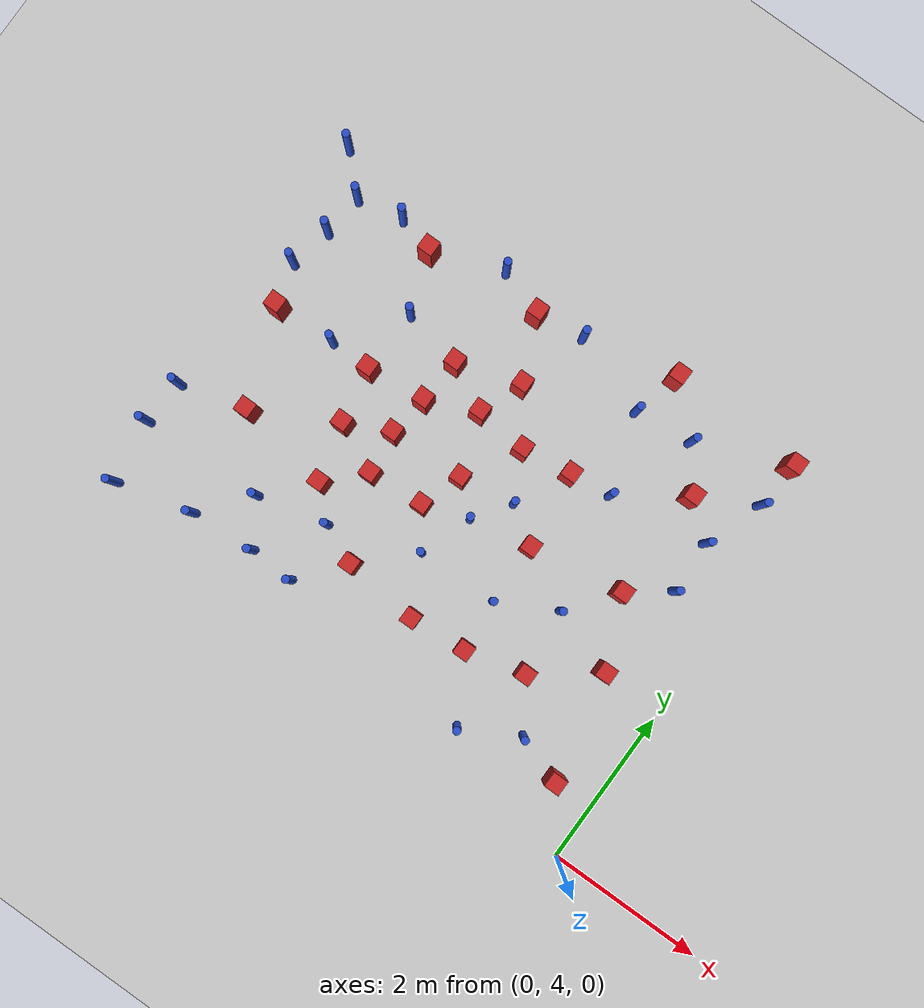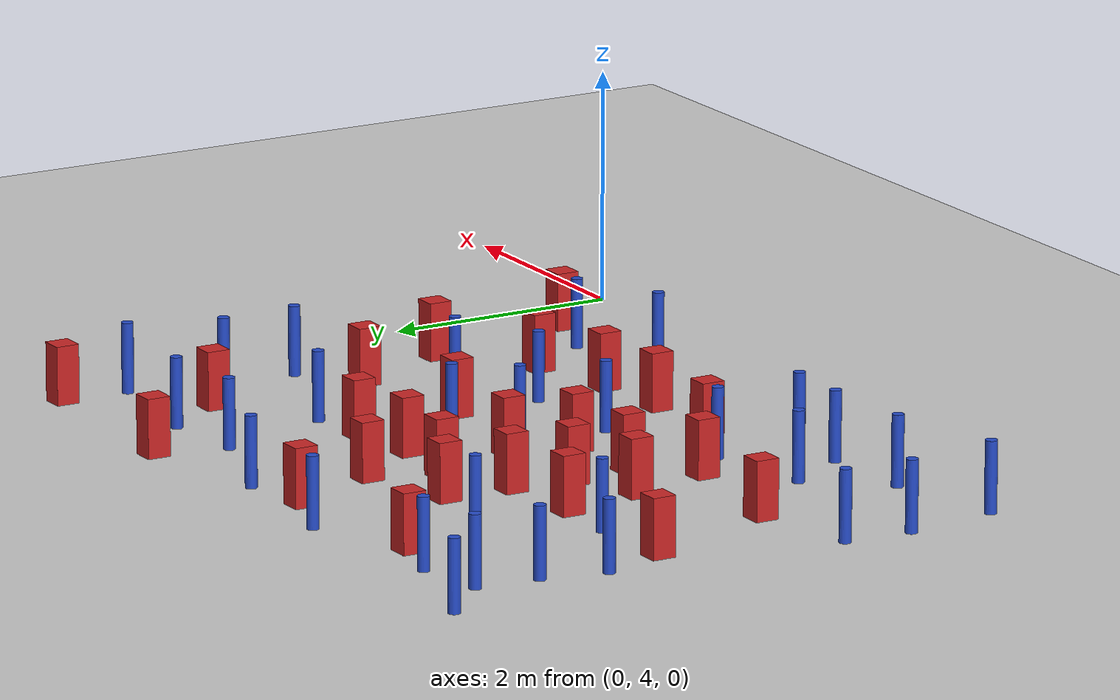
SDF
<sdf version="1.6">
 <world name="default">
  <model name="ground_plane">
   <static>1</static>
   <link name="link">
    <collision name="collision">
     <geometry><plane><normal>0 0 1</normal><size>100 100</size></plane></geometry>
     <surface><friction><ode><mu>100</mu><mu2>50</mu2></ode></friction></surface>
    </collision>
    <visual name="visual">
     <cast_shadows>0</cast_shadows>
     <geometry><plane><normal>0 0 1</normal><size>100 100</size></plane></geometry>
     <material>
      <ambient>1.0 1.0 1.0 1.0</ambient>
      <diffuse>0.8 0.8 0.8 1.0</diffuse>
      <specular>0.01 0.01 0.01 1.000000</specular>
     </material>
    </visual>
   </link>
  </model>
  <model name="pole_obstacle6">
   <static>true</static>
   <pose>-5.39871481957 5.40372556188 2.88873142074e-08 -9.90536690842e-09 4.60219948965e-07 -1.20965994976e-07</pose>
   <link name="link">
    <pose>0 0 0.3 0 -0 0</pose>
    <inertial>
     <mass>1</mass>
     <inertia><ixx>0.145833</ixx><ixy>0</ixy><ixz>0</ixz><iyy>0.145833</iyy><iyz>0</iyz><izz>0.125</izz></inertia>
    </inertial>
    <collision name="collision">
     <geometry><cylinder><radius>0.05</radius><length>.6</length></cylinder></geometry>
    </collision>
    <visual name="visual">
     <geometry><cylinder><radius>0.05</radius><length>.6</length></cylinder></geometry>
     <material>
      <script><name>Gazebo/Blue</name><uri>file://media/materials/scripts/gazebo.material</uri></script>
     </material>
    </visual>
   </link>
  </model>
  <model name="square_post_obstacle6">
   <static>true</static>
   <pose>-5.44352288722 8.96728063291 8.22691968438e-08 7.22125133819e-06 -7.54495500217e-07 2.29674213826e-05</pose>
   <link name="link">
    <pose>0 0 0.25 0 -0 0</pose>
    <inertial>
     <mass>100</mass>
     <inertia>
      <ixx>0.166667</ixx>
      <ixy>0</ixy>
      <ixz>0</ixz>
      <iyy>0.166667</iyy>
      <iyz>0</iyz>
      <izz>0.166667</izz>
     </inertia>
    </inertial>
    <collision name="collision"><geometry><box><size>.2 .2 .5</size></box></geometry></collision>
    <visual name="visual">
     <geometry><box><size>.2 .2 .5</size></box></geometry>
     <material>
      <script><name>Gazebo/Red</name><uri>file://media/materials/scripts/gazebo.material</uri></script>
     </material>
    </visual>
   </link>
  </model>
  <model name="square_post_obstacle9">
   <static>true</static>
   <pose>-2.40552962556 6.80216030799 8.22691968438e-08 7.2212513382e-06 -7.54495500217e-07 2.29674213826e-05</pose>
   <link name="link">
    <pose>0 0 0.25 0 -0 0</pose>
    <inertial>
     <mass>100</mass>
     <inertia>
      <ixx>0.166667</ixx>
      <ixy>0</ixy>
      <ixz>0</ixz>
      <iyy>0.166667</iyy>
      <iyz>0</iyz>
      <izz>0.166667</izz>
     </inertia>
    </inertial>
    <collision name="collision"><geometry><box><size>.2 .2 .5</size></box></geometry></collision>
    <visual name="visual">
     <geometry><box><size>.2 .2 .5</size></box></geometry>
     <material>
      <script><name>Gazebo/Red</name><uri>file://media/materials/scripts/gazebo.material</uri></script>
     </material>
    </visual>
   </link>
  </model>
  <model name="pole_obstacle13">
   <static>true</static>
   <pose>-5.18646854002 8.22817390246 2.88873142074e-08 -9.9053668967e-09 4.60219948993e-07 -1.20965994957e-07</pose>
   <link name="link">
    <pose>0 0 0.3 0 -0 0</pose>
    <inertial>
     <mass>1</mass>
     <inertia><ixx>0.145833</ixx><ixy>0</ixy><ixz>0</ixz><iyy>0.145833</iyy><iyz>0</iyz><izz>0.125</izz></inertia>
    </inertial>
    <collision name="collision">
     <geometry><cylinder><radius>0.05</radius><length>.6</length></cylinder></geometry>
    </collision>
    <visual name="visual">
     <geometry><cylinder><radius>0.05</radius><length>.6</length></cylinder></geometry>
     <material>
      <script><name>Gazebo/Blue</name><uri>file://media/materials/scripts/gazebo.material</uri></script>
     </material>
    </visual>
   </link>
  </model>
  <model name="square_post_obstacle12">
   <static>true</static>
   <pose>-4.40617375858 8.05628131034 8.22691968438e-08 7.22125133819e-06 -7.54495500217e-07 2.29674213826e-05</pose>
   <link name="link">
    <pose>0 0 0.25 0 -0 0</pose>
    <inertial>
     <mass>100</mass>
     <inertia>
      <ixx>0.166667</ixx>
      <ixy>0</ixy>
      <ixz>0</ixz>
      <iyy>0.166667</iyy>
      <iyz>0</iyz>
      <izz>0.166667</izz>
     </inertia>
    </inertial>
    <collision name="collision"><geometry><box><size>.2 .2 .5</size></box></geometry></collision>
    <visual name="visual">
     <geometry><box><size>.2 .2 .5</size></box></geometry>
     <material>
      <script><name>Gazebo/Red</name><uri>file://media/materials/scripts/gazebo.material</uri></script>
     </material>
    </visual>
   </link>
  </model>
  <model name="square_post_obstacle19">
   <static>true</static>
   <pose>-4.44675304929 7.47712940738 8.22691968438e-08 7.22125133819e-06 -7.54495500217e-07 2.29674213826e-05</pose>
   <link name="link">
    <pose>0 0 0.25 0 -0 0</pose>
    <inertial>
     <mass>100</mass>
     <inertia>
      <ixx>0.166667</ixx>
      <ixy>0</ixy>
      <ixz>0</ixz>
      <iyy>0.166667</iyy>
      <iyz>0</iyz>
      <izz>0.166667</izz>
     </inertia>
    </inertial>
    <collision name="collision"><geometry><box><size>.2 .2 .5</size></box></geometry></collision>
    <visual name="visual">
     <geometry><box><size>.2 .2 .5</size></box></geometry>
     <material>
      <script><name>Gazebo/Red</name><uri>file://media/materials/scripts/gazebo.material</uri></script>
     </material>
    </visual>
   </link>
  </model>
  <model name="pole_obstacle29">
   <static>true</static>
   <pose>-1.86663074836 4.56977435999 2.88873142074e-08 -9.90536689852e-09 4.60219948989e-07 -1.2096599496e-07</pose>
   <link name="link">
    <pose>0 0 0.3 0 -0 0</pose>
    <inertial>
     <mass>1</mass>
     <inertia><ixx>0.145833</ixx><ixy>0</ixy><ixz>0</ixz><iyy>0.145833</iyy><iyz>0</iyz><izz>0.125</izz></inertia>
    </inertial>
    <collision name="collision">
     <geometry><cylinder><radius>0.05</radius><length>.6</length></cylinder></geometry>
    </collision>
    <visual name="visual">
     <geometry><cylinder><radius>0.05</radius><length>.6</length></cylinder></geometry>
     <material>
      <script><name>Gazebo/Blue</name><uri>file://media/materials/scripts/gazebo.material</uri></script>
     </material>
    </visual>
   </link>
  </model>
  <model name="pole_obstacle34">
   <static>true</static>
   <pose>-0.481667703612 8.80842433048 2.88873142074e-08 -9.90536690305e-09 4.60219948978e-07 -1.20965994968e-07</pose>
   <link name="link">
    <pose>0 0 0.3 0 -0 0</pose>
    <inertial>
     <mass>1</mass>
     <inertia><ixx>0.145833</ixx><ixy>0</ixy><ixz>0</ixz><iyy>0.145833</iyy><iyz>0</iyz><izz>0.125</izz></inertia>
    </inertial>
    <collision name="collision">
     <geometry><cylinder><radius>0.05</radius><length>.6</length></cylinder></geometry>
    </collision>
    <visual name="visual">
     <geometry><cylinder><radius>0.05</radius><length>.6</length></cylinder></geometry>
     <material>
      <script><name>Gazebo/Blue</name><uri>file://media/materials/scripts/gazebo.material</uri></script>
     </material>
    </visual>
   </link>
  </model>
  <model name="pole_obstacle38">
   <static>true</static>
   <pose>-1.16498267179 4.93735905651 2.88873142074e-08 -9.90536689852e-09 4.60219948989e-07 -1.2096599496e-07</pose>
   <link name="link">
    <pose>0 0 0.3 0 -0 0</pose>
    <inertial>
     <mass>1</mass>
     <inertia><ixx>0.145833</ixx><ixy>0</ixy><ixz>0</ixz><iyy>0.145833</iyy><iyz>0</iyz><izz>0.125</izz></inertia>
    </inertial>
    <collision name="collision">
     <geometry><cylinder><radius>0.05</radius><length>.6</length></cylinder></geometry>
    </collision>
    <visual name="visual">
     <geometry><cylinder><radius>0.05</radius><length>.6</length></cylinder></geometry>
     <material>
      <script><name>Gazebo/Blue</name><uri>file://media/materials/scripts/gazebo.material</uri></script>
     </material>
    </visual>
   </link>
  </model>
  <model name="pole_obstacle42">
   <static>true</static>
   <pose>-0.716806600223 7.37980666322 2.88873142074e-08 -9.90536689661e-09 4.60219948993e-07 -1.20965994957e-07</pose>
   <link name="link">
    <pose>0 0 0.3 0 -0 0</pose>
    <inertial>
     <mass>1</mass>
     <inertia><ixx>0.145833</ixx><ixy>0</ixy><ixz>0</ixz><iyy>0.145833</iyy><iyz>0</iyz><izz>0.125</izz></inertia>
    </inertial>
    <collision name="collision">
     <geometry><cylinder><radius>0.05</radius><length>.6</length></cylinder></geometry>
    </collision>
    <visual name="visual">
     <geometry><cylinder><radius>0.05</radius><length>.6</length></cylinder></geometry>
     <material>
      <script><name>Gazebo/Blue</name><uri>file://media/materials/scripts/gazebo.material</uri></script>
     </material>
    </visual>
   </link>
  </model>
  <model name="square_post_obstacle31">
   <static>true</static>
   <pose>-3.05456884452 5.30377931541 8.22691968438e-08 7.2212513382e-06 -7.54495500217e-07 2.29674213826e-05</pose>
   <link name="link">
    <pose>0 0 0.25 0 -0 0</pose>
    <inertial>
     <mass>100</mass>
     <inertia>
      <ixx>0.166667</ixx>
      <ixy>0</ixy>
      <ixz>0</ixz>
      <iyy>0.166667</iyy>
      <iyz>0</iyz>
      <izz>0.166667</izz>
     </inertia>
    </inertial>
    <collision name="collision"><geometry><box><size>.2 .2 .5</size></box></geometry></collision>
    <visual name="visual">
     <geometry><box><size>.2 .2 .5</size></box></geometry>
     <material>
      <script><name>Gazebo/Red</name><uri>file://media/materials/scripts/gazebo.material</uri></script>
     </material>
    </visual>
   </link>
  </model>
  <model name="square_post_obstacle43">
   <static>true</static>
   <pose>-2.17245626034 9.46087501841 8.22691968438e-08 7.22125133819e-06 -7.54495500217e-07 2.29674213826e-05</pose>
   <link name="link">
    <pose>0 0 0.25 0 -0 0</pose>
    <inertial>
     <mass>100</mass>
     <inertia>
      <ixx>0.166667</ixx>
      <ixy>0</ixy>
      <ixz>0</ixz>
      <iyy>0.166667</iyy>
      <iyz>0</iyz>
      <izz>0.166667</izz>
     </inertia>
    </inertial>
    <collision name="collision"><geometry><box><size>.2 .2 .5</size></box></geometry></collision>
    <visual name="visual">
     <geometry><box><size>.2 .2 .5</size></box></geometry>
     <material>
      <script><name>Gazebo/Red</name><uri>file://media/materials/scripts/gazebo.material</uri></script>
     </material>
    </visual>
   </link>
  </model>
  <model name="pole_obstacle58">
   <static>true</static>
   <pose>-6.58434059168 8.46457107998 2.88873142074e-08 -9.9053668967e-09 4.60219948993e-07 -1.20965994957e-07</pose>
   <link name="link">
    <pose>0 0 0.3 0 -0 0</pose>
    <inertial>
     <mass>1</mass>
     <inertia><ixx>0.145833</ixx><ixy>0</ixy><ixz>0</ixz><iyy>0.145833</iyy><iyz>0</iyz><izz>0.125</izz></inertia>
    </inertial>
    <collision name="collision">
     <geometry><cylinder><radius>0.05</radius><length>.6</length></cylinder></geometry>
    </collision>
    <visual name="visual">
     <geometry><cylinder><radius>0.05</radius><length>.6</length></cylinder></geometry>
     <material>
      <script><name>Gazebo/Blue</name><uri>file://media/materials/scripts/gazebo.material</uri></script>
     </material>
    </visual>
   </link>
  </model>
  <model name="pole_obstacle60">
   <static>true</static>
   <pose>-6.53059413038 9.00175205333 2.88873142074e-08 -9.9053668967e-09 4.60219948993e-07 -1.20965994957e-07</pose>
   <link name="link">
    <pose>0 0 0.3 0 -0 0</pose>
    <inertial>
     <mass>1</mass>
     <inertia><ixx>0.145833</ixx><ixy>0</ixy><ixz>0</ixz><iyy>0.145833</iyy><iyz>0</iyz><izz>0.125</izz></inertia>
    </inertial>
    <collision name="collision">
     <geometry><cylinder><radius>0.05</radius><length>.6</length></cylinder></geometry>
    </collision>
    <visual name="visual">
     <geometry><cylinder><radius>0.05</radius><length>.6</length></cylinder></geometry>
     <material>
      <script><name>Gazebo/Blue</name><uri>file://media/materials/scripts/gazebo.material</uri></script>
     </material>
    </visual>
   </link>
  </model>
  <model name="pole_obstacle62">
   <static>true</static>
   <pose>-5.06025532116 4.84926571977 2.88873142074e-08 -9.90536690842e-09 4.60219948965e-07 -1.20965994976e-07</pose>
   <link name="link">
    <pose>0 0 0.3 0 -0 0</pose>
    <inertial>
     <mass>1</mass>
     <inertia><ixx>0.145833</ixx><ixy>0</ixy><ixz>0</ixz><iyy>0.145833</iyy><iyz>0</iyz><izz>0.125</izz></inertia>
    </inertial>
    <collision name="collision">
     <geometry><cylinder><radius>0.05</radius><length>.6</length></cylinder></geometry>
    </collision>
    <visual name="visual">
     <geometry><cylinder><radius>0.05</radius><length>.6</length></cylinder></geometry>
     <material>
      <script><name>Gazebo/Blue</name><uri>file://media/materials/scripts/gazebo.material</uri></script>
     </material>
    </visual>
   </link>
  </model>
  <model name="pole_obstacle67">
   <static>true</static>
   <pose>-3.18029994848 6.6601045909 2.88873142074e-08 -9.90536689859e-09 4.60219948989e-07 -1.20965994961e-07</pose>
   <link name="link">
    <pose>0 0 0.3 0 -0 0</pose>
    <inertial>
     <mass>1</mass>
     <inertia><ixx>0.145833</ixx><ixy>0</ixy><ixz>0</ixz><iyy>0.145833</iyy><iyz>0</iyz><izz>0.125</izz></inertia>
    </inertial>
    <collision name="collision">
     <geometry><cylinder><radius>0.05</radius><length>.6</length></cylinder></geometry>
    </collision>
    <visual name="visual">
     <geometry><cylinder><radius>0.05</radius><length>.6</length></cylinder></geometry>
     <material>
      <script><name>Gazebo/Blue</name><uri>file://media/materials/scripts/gazebo.material</uri></script>
     </material>
    </visual>
   </link>
  </model>
  <model name="square_post_obstacle56">
   <static>true</static>
   <pose>-5.06118573925 6.69937306652 8.22691968438e-08 7.2212513382e-06 -7.54495500217e-07 2.29674213826e-05</pose>
   <link name="link">
    <pose>0 0 0.25 0 -0 0</pose>
    <inertial>
     <mass>100</mass>
     <inertia>
      <ixx>0.166667</ixx>
      <ixy>0</ixy>
      <ixz>0</ixz>
      <iyy>0.166667</iyy>
      <iyz>0</iyz>
      <izz>0.166667</izz>
     </inertia>
    </inertial>
    <collision name="collision"><geometry><box><size>.2 .2 .5</size></box></geometry></collision>
    <visual name="visual">
     <geometry><box><size>.2 .2 .5</size></box></geometry>
     <material>
      <script><name>Gazebo/Red</name><uri>file://media/materials/scripts/gazebo.material</uri></script>
     </material>
    </visual>
   </link>
  </model>
  <model name="pole_obstacle71">
   <static>true</static>
   <pose>-4.56548550473 9.32434049123 2.88873142074e-08 -9.9053668967e-09 4.60219948993e-07 -1.20965994957e-07</pose>
   <link name="link">
    <pose>0 0 0.3 0 -0 0</pose>
    <inertial>
     <mass>1</mass>
     <inertia><ixx>0.145833</ixx><ixy>0</ixy><ixz>0</ixz><iyy>0.145833</iyy><iyz>0</iyz><izz>0.125</izz></inertia>
    </inertial>
    <collision name="collision">
     <geometry><cylinder><radius>0.05</radius><length>.6</length></cylinder></geometry>
    </collision>
    <visual name="visual">
     <geometry><cylinder><radius>0.05</radius><length>.6</length></cylinder></geometry>
     <material>
      <script><name>Gazebo/Blue</name><uri>file://media/materials/scripts/gazebo.material</uri></script>
     </material>
    </visual>
   </link>
  </model>
  <model name="square_post_obstacle62">
   <static>true</static>
   <pose>-2.33165816164 5.36291998302 8.22691968438e-08 7.2212513382e-06 -7.54495500217e-07 2.29674213826e-05</pose>
   <link name="link">
    <pose>0 0 0.25 0 -0 0</pose>
    <inertial>
     <mass>100</mass>
     <inertia>
      <ixx>0.166667</ixx>
      <ixy>0</ixy>
      <ixz>0</ixz>
      <iyy>0.166667</iyy>
      <iyz>0</iyz>
      <izz>0.166667</izz>
     </inertia>
    </inertial>
    <collision name="collision"><geometry><box><size>.2 .2 .5</size></box></geometry></collision>
    <visual name="visual">
     <geometry><box><size>.2 .2 .5</size></box></geometry>
     <material>
      <script><name>Gazebo/Red</name><uri>file://media/materials/scripts/gazebo.material</uri></script>
     </material>
    </visual>
   </link>
  </model>
  <model name="pole_obstacle87">
   <static>true</static>
   <pose>-2.3881738949 6.02360435601 2.88873142074e-08 -9.90536689859e-09 4.60219948989e-07 -1.20965994961e-07</pose>
   <link name="link">
    <pose>0 0 0.3 0 -0 0</pose>
    <inertial>
     <mass>1</mass>
     <inertia><ixx>0.145833</ixx><ixy>0</ixy><ixz>0</ixz><iyy>0.145833</iyy><iyz>0</iyz><izz>0.125</izz></inertia>
    </inertial>
    <collision name="collision">
     <geometry><cylinder><radius>0.05</radius><length>.6</length></cylinder></geometry>
    </collision>
    <visual name="visual">
     <geometry><cylinder><radius>0.05</radius><length>.6</length></cylinder></geometry>
     <material>
      <script><name>Gazebo/Blue</name><uri>file://media/materials/scripts/gazebo.material</uri></script>
     </material>
    </visual>
   </link>
  </model>
  <model name="square_post_obstacle75">
   <static>true</static>
   <pose>-4.87313858558 5.97172338663 8.22691968438e-08 7.2212513382e-06 -7.54495500217e-07 2.29674213826e-05</pose>
   <link name="link">
    <pose>0 0 0.25 0 -0 0</pose>
    <inertial>
     <mass>100</mass>
     <inertia>
      <ixx>0.166667</ixx>
      <ixy>0</ixy>
      <ixz>0</ixz>
      <iyy>0.166667</iyy>
      <iyz>0</iyz>
      <izz>0.166667</izz>
     </inertia>
    </inertial>
    <collision name="collision"><geometry><box><size>.2 .2 .5</size></box></geometry></collision>
    <visual name="visual">
     <geometry><box><size>.2 .2 .5</size></box></geometry>
     <material>
      <script><name>Gazebo/Red</name><uri>file://media/materials/scripts/gazebo.material</uri></script>
     </material>
    </visual>
   </link>
  </model>
  <model name="square_post_obstacle82">
   <static>true</static>
   <pose>-1.20971226837 8.40406901079 8.22691968438e-08 7.22125133819e-06 -7.54495500217e-07 2.29674213826e-05</pose>
   <link name="link">
    <pose>0 0 0.25 0 -0 0</pose>
    <inertial>
     <mass>100</mass>
     <inertia>
      <ixx>0.166667</ixx>
      <ixy>0</ixy>
      <ixz>0</ixz>
      <iyy>0.166667</iyy>
      <iyz>0</iyz>
      <izz>0.166667</izz>
     </inertia>
    </inertial>
    <collision name="collision"><geometry><box><size>.2 .2 .5</size></box></geometry></collision>
    <visual name="visual">
     <geometry><box><size>.2 .2 .5</size></box></geometry>
     <material>
      <script><name>Gazebo/Red</name><uri>file://media/materials/scripts/gazebo.material</uri></script>
     </material>
    </visual>
   </link>
  </model>
  <model name="square_post_obstacle84">
   <static>true</static>
   <pose>-0.839483927578 6.1164537675 8.22691968438e-08 7.2212513382e-06 -7.54495500217e-07 2.29674213826e-05</pose>
   <link name="link">
    <pose>0 0 0.25 0 -0 0</pose>
    <inertial>
     <mass>100</mass>
     <inertia>
      <ixx>0.166667</ixx>
      <ixy>0</ixy>
      <ixz>0</ixz>
      <iyy>0.166667</iyy>
      <iyz>0</iyz>
      <izz>0.166667</izz>
     </inertia>
    </inertial>
    <collision name="collision"><geometry><box><size>.2 .2 .5</size></box></geometry></collision>
    <visual name="visual">
     <geometry><box><size>.2 .2 .5</size></box></geometry>
     <material>
      <script><name>Gazebo/Red</name><uri>file://media/materials/scripts/gazebo.material</uri></script>
     </material>
    </visual>
   </link>
  </model>
  <model name="pole_obstacle94">
   <static>true</static>
   <pose>-4.51606417803 5.6131885328 2.88873142074e-08 -9.90536690842e-09 4.60219948965e-07 -1.20965994976e-07</pose>
   <link name="link">
    <pose>0 0 0.3 0 -0 0</pose>
    <inertial>
     <mass>1</mass>
     <inertia><ixx>0.145833</ixx><ixy>0</ixy><ixz>0</ixz><iyy>0.145833</iyy><iyz>0</iyz><izz>0.125</izz></inertia>
    </inertial>
    <collision name="collision">
     <geometry><cylinder><radius>0.05</radius><length>.6</length></cylinder></geometry>
    </collision>
    <visual name="visual">
     <geometry><cylinder><radius>0.05</radius><length>.6</length></cylinder></geometry>
     <material>
      <script><name>Gazebo/Blue</name><uri>file://media/materials/scripts/gazebo.material</uri></script>
     </material>
    </visual>
   </link>
  </model>
  <model name="pole_obstacle96">
   <static>true</static>
   <pose>-5.89325433743 4.7924099447 2.88873142074e-08 -9.90536690842e-09 4.60219948965e-07 -1.20965994976e-07</pose>
   <link name="link">
    <pose>0 0 0.3 0 -0 0</pose>
    <inertial>
     <mass>1</mass>
     <inertia><ixx>0.145833</ixx><ixy>0</ixy><ixz>0</ixz><iyy>0.145833</iyy><iyz>0</iyz><izz>0.125</izz></inertia>
    </inertial>
    <collision name="collision">
     <geometry><cylinder><radius>0.05</radius><length>.6</length></cylinder></geometry>
    </collision>
    <visual name="visual">
     <geometry><cylinder><radius>0.05</radius><length>.6</length></cylinder></geometry>
     <material>
      <script><name>Gazebo/Blue</name><uri>file://media/materials/scripts/gazebo.material</uri></script>
     </material>
    </visual>
   </link>
  </model>
  <model name="pole_obstacle100">
   <static>true</static>
   <pose>-3.35337035426 9.21310781277 2.88873142074e-08 -9.90536692318e-09 4.6021994893e-07 -1.20965994988e-07</pose>
   <link name="link">
    <pose>0 0 0.3 0 -0 0</pose>
    <inertial>
     <mass>1</mass>
     <inertia><ixx>0.145833</ixx><ixy>0</ixy><ixz>0</ixz><iyy>0.145833</iyy><iyz>0</iyz><izz>0.125</izz></inertia>
    </inertial>
    <collision name="collision">
     <geometry><cylinder><radius>0.05</radius><length>.6</length></cylinder></geometry>
    </collision>
    <visual name="visual">
     <geometry><cylinder><radius>0.05</radius><length>.6</length></cylinder></geometry>
     <material>
      <script><name>Gazebo/Blue</name><uri>file://media/materials/scripts/gazebo.material</uri></script>
     </material>
    </visual>
   </link>
  </model>
  <model name="square_post_obstacle93">
   <static>true</static>
   <pose>-5.19623955509 7.39889034241 8.22691968438e-08 7.2212513382e-06 -7.54495500217e-07 2.29674213826e-05</pose>
   <link name="link">
    <pose>0 0 0.25 0 -0 0</pose>
    <inertial>
     <mass>100</mass>
     <inertia>
      <ixx>0.166667</ixx>
      <ixy>0</ixy>
      <ixz>0</ixz>
      <iyy>0.166667</iyy>
      <iyz>0</iyz>
      <izz>0.166667</izz>
     </inertia>
    </inertial>
    <collision name="collision"><geometry><box><size>.2 .2 .5</size></box></geometry></collision>
    <visual name="visual">
     <geometry><box><size>.2 .2 .5</size></box></geometry>
     <material>
      <script><name>Gazebo/Red</name><uri>file://media/materials/scripts/gazebo.material</uri></script>
     </material>
    </visual>
   </link>
  </model>
  <model name="square_post_obstacle98">
   <static>true</static>
   <pose>-1.2213538814 6.99735682938 8.22691968438e-08 7.2212513382e-06 -7.54495500217e-07 2.29674213826e-05</pose>
   <link name="link">
    <pose>0 0 0.25 0 -0 0</pose>
    <inertial>
     <mass>100</mass>
     <inertia>
      <ixx>0.166667</ixx>
      <ixy>0</ixy>
      <ixz>0</ixz>
      <iyy>0.166667</iyy>
      <iyz>0</iyz>
      <izz>0.166667</izz>
     </inertia>
    </inertial>
    <collision name="collision"><geometry><box><size>.2 .2 .5</size></box></geometry></collision>
    <visual name="visual">
     <geometry><box><size>.2 .2 .5</size></box></geometry>
     <material>
      <script><name>Gazebo/Red</name><uri>file://media/materials/scripts/gazebo.material</uri></script>
     </material>
    </visual>
   </link>
  </model>
  <model name="pole_obstacle111">
   <static>true</static>
   <pose>-1.99493561344 7.85896032537 2.88873142074e-08 -9.90536689721e-09 4.60219948992e-07 -1.20965994958e-07</pose>
   <link name="link">
    <pose>0 0 0.3 0 -0 0</pose>
    <inertial>
     <mass>1</mass>
     <inertia><ixx>0.145833</ixx><ixy>0</ixy><ixz>0</ixz><iyy>0.145833</iyy><iyz>0</iyz><izz>0.125</izz></inertia>
    </inertial>
    <collision name="collision">
     <geometry><cylinder><radius>0.05</radius><length>.6</length></cylinder></geometry>
    </collision>
    <visual name="visual">
     <geometry><cylinder><radius>0.05</radius><length>.6</length></cylinder></geometry>
     <material>
      <script><name>Gazebo/Blue</name><uri>file://media/materials/scripts/gazebo.material</uri></script>
     </material>
    </visual>
   </link>
  </model>
  <model name="square_post_obstacle106">
   <static>true</static>
   <pose>-4.44873407707 6.40785976472 8.22691968438e-08 7.2212513382e-06 -7.54495500217e-07 2.29674213826e-05</pose>
   <link name="link">
    <pose>0 0 0.25 0 -0 0</pose>
    <inertial>
     <mass>100</mass>
     <inertia>
      <ixx>0.166667</ixx>
      <ixy>0</ixy>
      <ixz>0</ixz>
      <iyy>0.166667</iyy>
      <iyz>0</iyz>
      <izz>0.166667</izz>
     </inertia>
    </inertial>
    <collision name="collision"><geometry><box><size>.2 .2 .5</size></box></geometry></collision>
    <visual name="visual">
     <geometry><box><size>.2 .2 .5</size></box></geometry>
     <material>
      <script><name>Gazebo/Red</name><uri>file://media/materials/scripts/gazebo.material</uri></script>
     </material>
    </visual>
   </link>
  </model>
  <model name="square_post_obstacle110">
   <static>true</static>
   <pose>-0.45504423027 9.3937897427 8.22691968438e-08 7.22125133819e-06 -7.54495500217e-07 2.29674213826e-05</pose>
   <link name="link">
    <pose>0 0 0.25 0 -0 0</pose>
    <inertial>
     <mass>100</mass>
     <inertia>
      <ixx>0.166667</ixx>
      <ixy>0</ixy>
      <ixz>0</ixz>
      <iyy>0.166667</iyy>
      <iyz>0</iyz>
      <izz>0.166667</izz>
     </inertia>
    </inertial>
    <collision name="collision"><geometry><box><size>.2 .2 .5</size></box></geometry></collision>
    <visual name="visual">
     <geometry><box><size>.2 .2 .5</size></box></geometry>
     <material>
      <script><name>Gazebo/Red</name><uri>file://media/materials/scripts/gazebo.material</uri></script>
     </material>
    </visual>
   </link>
  </model>
  <model name="square_post_obstacle117">
   <static>true</static>
   <pose>-3.82484179708 7.75393897878 8.22691968438e-08 7.2212513382e-06 -7.54495500217e-07 2.29674213826e-05</pose>
   <link name="link">
    <pose>0 0 0.25 0 -0 0</pose>
    <inertial>
     <mass>100</mass>
     <inertia>
      <ixx>0.166667</ixx>
      <ixy>0</ixy>
      <ixz>0</ixz>
      <iyy>0.166667</iyy>
      <iyz>0</iyz>
      <izz>0.166667</izz>
     </inertia>
    </inertial>
    <collision name="collision"><geometry><box><size>.2 .2 .5</size></box></geometry></collision>
    <visual name="visual">
     <geometry><box><size>.2 .2 .5</size></box></geometry>
     <material>
      <script><name>Gazebo/Red</name><uri>file://media/materials/scripts/gazebo.material</uri></script>
     </material>
    </visual>
   </link>
  </model>
  <model name="pole_obstacle118">
   <static>true</static>
   <pose>-2.32695363559 8.85681343982 2.88873142074e-08 -9.90536692318e-09 4.6021994893e-07 -1.20965994988e-07</pose>
   <link name="link">
    <pose>0 0 0.3 0 -0 0</pose>
    <inertial>
     <mass>1</mass>
     <inertia><ixx>0.145833</ixx><ixy>0</ixy><ixz>0</ixz><iyy>0.145833</iyy><iyz>0</iyz><izz>0.125</izz></inertia>
    </inertial>
    <collision name="collision">
     <geometry><cylinder><radius>0.05</radius><length>.6</length></cylinder></geometry>
    </collision>
    <visual name="visual">
     <geometry><cylinder><radius>0.05</radius><length>.6</length></cylinder></geometry>
     <material>
      <script><name>Gazebo/Blue</name><uri>file://media/materials/scripts/gazebo.material</uri></script>
     </material>
    </visual>
   </link>
  </model>
  <model name="pole_obstacle127">
   <static>true</static>
   <pose>-6.86161632695 4.54932415554 2.88873142074e-08 -9.90536690842e-09 4.60219948965e-07 -1.20965994976e-07</pose>
   <link name="link">
    <pose>0 0 0.3 0 -0 0</pose>
    <inertial>
     <mass>1</mass>
     <inertia><ixx>0.145833</ixx><ixy>0</ixy><ixz>0</ixz><iyy>0.145833</iyy><iyz>0</iyz><izz>0.125</izz></inertia>
    </inertial>
    <collision name="collision">
     <geometry><cylinder><radius>0.05</radius><length>.6</length></cylinder></geometry>
    </collision>
    <visual name="visual">
     <geometry><cylinder><radius>0.05</radius><length>.6</length></cylinder></geometry>
     <material>
      <script><name>Gazebo/Blue</name><uri>file://media/materials/scripts/gazebo.material</uri></script>
     </material>
    </visual>
   </link>
  </model>
  <model name="square_post_obstacle131">
   <static>true</static>
   <pose>-3.96247047747 9.10130128998 8.22691968438e-08 7.22125133819e-06 -7.54495500217e-07 2.29674213826e-05</pose>
   <link name="link">
    <pose>0 0 0.25 0 -0 0</pose>
    <inertial>
     <mass>100</mass>
     <inertia>
      <ixx>0.166667</ixx>
      <ixy>0</ixy>
      <ixz>0</ixz>
      <iyy>0.166667</iyy>
      <iyz>0</iyz>
      <izz>0.166667</izz>
     </inertia>
    </inertial>
    <collision name="collision"><geometry><box><size>.2 .2 .5</size></box></geometry></collision>
    <visual name="visual">
     <geometry><box><size>.2 .2 .5</size></box></geometry>
     <material>
      <script><name>Gazebo/Red</name><uri>file://media/materials/scripts/gazebo.material</uri></script>
     </material>
    </visual>
   </link>
  </model>
  <model name="square_post_obstacle134">
   <static>true</static>
   <pose>-3.61095404733 8.30838900713 8.22691968438e-08 7.22125133819e-06 -7.54495500217e-07 2.29674213826e-05</pose>
   <link name="link">
    <pose>0 0 0.25 0 -0 0</pose>
    <inertial>
     <mass>100</mass>
     <inertia>
      <ixx>0.166667</ixx>
      <ixy>0</ixy>
      <ixz>0</ixz>
      <iyy>0.166667</iyy>
      <iyz>0</iyz>
      <izz>0.166667</izz>
     </inertia>
    </inertial>
    <collision name="collision"><geometry><box><size>.2 .2 .5</size></box></geometry></collision>
    <visual name="visual">
     <geometry><box><size>.2 .2 .5</size></box></geometry>
     <material>
      <script><name>Gazebo/Red</name><uri>file://media/materials/scripts/gazebo.material</uri></script>
     </material>
    </visual>
   </link>
  </model>
  <model name="square_post_obstacle140">
   <static>true</static>
   <pose>-3.74321945377 6.46097556506 8.22691968438e-08 7.2212513382e-06 -7.54495500217e-07 2.29674213826e-05</pose>
   <link name="link">
    <pose>0 0 0.25 0 -0 0</pose>
    <inertial>
     <mass>100</mass>
     <inertia>
      <ixx>0.166667</ixx>
      <ixy>0</ixy>
      <ixz>0</ixz>
      <iyy>0.166667</iyy>
      <iyz>0</iyz>
      <izz>0.166667</izz>
     </inertia>
    </inertial>
    <collision name="collision"><geometry><box><size>.2 .2 .5</size></box></geometry></collision>
    <visual name="visual">
     <geometry><box><size>.2 .2 .5</size></box></geometry>
     <material>
      <script><name>Gazebo/Red</name><uri>file://media/materials/scripts/gazebo.material</uri></script>
     </material>
    </visual>
   </link>
  </model>
  <model name="square_post_obstacle149">
   <static>true</static>
   <pose>-6.06745168583 6.16644587237 8.22691968438e-08 7.22125133819e-06 -7.54495500217e-07 2.29674213826e-05</pose>
   <link name="link">
    <pose>0 0 0.25 0 -0 0</pose>
    <inertial>
     <mass>100</mass>
     <inertia>
      <ixx>0.166667</ixx>
      <ixy>0</ixy>
      <ixz>0</ixz>
      <iyy>0.166667</iyy>
      <iyz>0</iyz>
      <izz>0.166667</izz>
     </inertia>
    </inertial>
    <collision name="collision"><geometry><box><size>.2 .2 .5</size></box></geometry></collision>
    <visual name="visual">
     <geometry><box><size>.2 .2 .5</size></box></geometry>
     <material>
      <script><name>Gazebo/Red</name><uri>file://media/materials/scripts/gazebo.material</uri></script>
     </material>
    </visual>
   </link>
  </model>
  <model name="pole_obstacle157">
   <static>true</static>
   <pose>-6.98146782488 5.36017430122 2.88873142074e-08 -9.90536690842e-09 4.60219948965e-07 -1.20965994976e-07</pose>
   <link name="link">
    <pose>0 0 0.3 0 -0 0</pose>
    <inertial>
     <mass>1</mass>
     <inertia><ixx>0.145833</ixx><ixy>0</ixy><ixz>0</ixz><iyy>0.145833</iyy><iyz>0</iyz><izz>0.125</izz></inertia>
    </inertial>
    <collision name="collision">
     <geometry><cylinder><radius>0.05</radius><length>.6</length></cylinder></geometry>
    </collision>
    <visual name="visual">
     <geometry><cylinder><radius>0.05</radius><length>.6</length></cylinder></geometry>
     <material>
      <script><name>Gazebo/Blue</name><uri>file://media/materials/scripts/gazebo.material</uri></script>
     </material>
    </visual>
   </link>
  </model>
  <model name="square_post_obstacle153">
   <static>true</static>
   <pose>-4.51472928342 6.95508696486 8.22691968438e-08 7.22125133819e-06 -7.54495500217e-07 2.29674213826e-05</pose>
   <link name="link">
    <pose>0 0 0.25 0 -0 0</pose>
    <inertial>
     <mass>100</mass>
     <inertia>
      <ixx>0.166667</ixx>
      <ixy>0</ixy>
      <ixz>0</ixz>
      <iyy>0.166667</iyy>
      <iyz>0</iyz>
      <izz>0.166667</izz>
     </inertia>
    </inertial>
    <collision name="collision"><geometry><box><size>.2 .2 .5</size></box></geometry></collision>
    <visual name="visual">
     <geometry><box><size>.2 .2 .5</size></box></geometry>
     <material>
      <script><name>Gazebo/Red</name><uri>file://media/materials/scripts/gazebo.material</uri></script>
     </material>
    </visual>
   </link>
  </model>
  <model name="pole_obstacle168">
   <static>true</static>
   <pose>-1.58609098921 8.94091670959 2.88873142074e-08 -9.90536690474e-09 4.60219948974e-07 -1.2096599497e-07</pose>
   <link name="link">
    <pose>0 0 0.3 0 -0 0</pose>
    <inertial>
     <mass>1</mass>
     <inertia><ixx>0.145833</ixx><ixy>0</ixy><ixz>0</ixz><iyy>0.145833</iyy><iyz>0</iyz><izz>0.125</izz></inertia>
    </inertial>
    <collision name="collision">
     <geometry><cylinder><radius>0.05</radius><length>.6</length></cylinder></geometry>
    </collision>
    <visual name="visual">
     <geometry><cylinder><radius>0.05</radius><length>.6</length></cylinder></geometry>
     <material>
      <script><name>Gazebo/Blue</name><uri>file://media/materials/scripts/gazebo.material</uri></script>
     </material>
    </visual>
   </link>
  </model>
  <model name="square_post_obstacle167">
   <static>true</static>
   <pose>-6.5147730546 7.37311010386 8.22691968438e-08 7.2212513382e-06 -7.54495500217e-07 2.29674213826e-05</pose>
   <link name="link">
    <pose>0 0 0.25 0 -0 0</pose>
    <inertial>
     <mass>100</mass>
     <inertia>
      <ixx>0.166667</ixx>
      <ixy>0</ixy>
      <ixz>0</ixz>
      <iyy>0.166667</iyy>
      <iyz>0</iyz>
      <izz>0.166667</izz>
     </inertia>
    </inertial>
    <collision name="collision"><geometry><box><size>.2 .2 .5</size></box></geometry></collision>
    <visual name="visual">
     <geometry><box><size>.2 .2 .5</size></box></geometry>
     <material>
      <script><name>Gazebo/Red</name><uri>file://media/materials/scripts/gazebo.material</uri></script>
     </material>
    </visual>
   </link>
  </model>
  <model name="square_post_obstacle171">
   <static>true</static>
   <pose>-3.56129288994 6.99030373933 8.22691968438e-08 7.2212513382e-06 -7.54495500217e-07 2.29674213826e-05</pose>
   <link name="link">
    <pose>0 0 0.25 0 -0 0</pose>
    <inertial>
     <mass>100</mass>
     <inertia>
      <ixx>0.166667</ixx>
      <ixy>0</ixy>
      <ixz>0</ixz>
      <iyy>0.166667</iyy>
      <iyz>0</iyz>
      <izz>0.166667</izz>
     </inertia>
    </inertial>
    <collision name="collision"><geometry><box><size>.2 .2 .5</size></box></geometry></collision>
    <visual name="visual">
     <geometry><box><size>.2 .2 .5</size></box></geometry>
     <material>
      <script><name>Gazebo/Red</name><uri>file://media/materials/scripts/gazebo.material</uri></script>
     </material>
    </visual>
   </link>
  </model>
  <model name="pole_obstacle176">
   <static>true</static>
   <pose>-3.41327831044 5.9939569309 2.88873142074e-08 -9.90536689859e-09 4.60219948989e-07 -1.20965994961e-07</pose>
   <link name="link">
    <pose>0 0 0.3 0 -0 0</pose>
    <inertial>
     <mass>1</mass>
     <inertia><ixx>0.145833</ixx><ixy>0</ixy><ixz>0</ixz><iyy>0.145833</iyy><iyz>0</iyz><izz>0.125</izz></inertia>
    </inertial>
    <collision name="collision">
     <geometry><cylinder><radius>0.05</radius><length>.6</length></cylinder></geometry>
    </collision>
    <visual name="visual">
     <geometry><cylinder><radius>0.05</radius><length>.6</length></cylinder></geometry>
     <material>
      <script><name>Gazebo/Blue</name><uri>file://media/materials/scripts/gazebo.material</uri></script>
     </material>
    </visual>
   </link>
  </model>
  <model name="square_post_obstacle181">
   <static>true</static>
   <pose>-1.58527288433 5.55191444772 8.22691968438e-08 7.2212513382e-06 -7.54495500217e-07 2.29674213826e-05</pose>
   <link name="link">
    <pose>0 0 0.25 0 -0 0</pose>
    <inertial>
     <mass>100</mass>
     <inertia>
      <ixx>0.166667</ixx>
      <ixy>0</ixy>
      <ixz>0</ixz>
      <iyy>0.166667</iyy>
      <iyz>0</iyz>
      <izz>0.166667</izz>
     </inertia>
    </inertial>
    <collision name="collision"><geometry><box><size>.2 .2 .5</size></box></geometry></collision>
    <visual name="visual">
     <geometry><box><size>.2 .2 .5</size></box></geometry>
     <material>
      <script><name>Gazebo/Red</name><uri>file://media/materials/scripts/gazebo.material</uri></script>
     </material>
    </visual>
   </link>
  </model>
  <model name="square_post_obstacle188">
   <static>true</static>
   <pose>-0.572451701398 4.73654997949 8.22691968438e-08 7.2212513382e-06 -7.54495500217e-07 2.29674213826e-05</pose>
   <link name="link">
    <pose>0 0 0.25 0 -0 0</pose>
    <inertial>
     <mass>100</mass>
     <inertia>
      <ixx>0.166667</ixx>
      <ixy>0</ixy>
      <ixz>0</ixz>
      <iyy>0.166667</iyy>
      <iyz>0</iyz>
      <izz>0.166667</izz>
     </inertia>
    </inertial>
    <collision name="collision"><geometry><box><size>.2 .2 .5</size></box></geometry></collision>
    <visual name="visual">
     <geometry><box><size>.2 .2 .5</size></box></geometry>
     <material>
      <script><name>Gazebo/Red</name><uri>file://media/materials/scripts/gazebo.material</uri></script>
     </material>
    </visual>
   </link>
  </model>
  <model name="pole_obstacle187">
   <static>true</static>
   <pose>-2.86485488029 7.11145713791 2.88873142074e-08 -9.90536689859e-09 4.60219948989e-07 -1.20965994961e-07</pose>
   <link name="link">
    <pose>0 0 0.3 0 -0 0</pose>
    <inertial>
     <mass>1</mass>
     <inertia><ixx>0.145833</ixx><ixy>0</ixy><ixz>0</ixz><iyy>0.145833</iyy><iyz>0</iyz><izz>0.125</izz></inertia>
    </inertial>
    <collision name="collision">
     <geometry><cylinder><radius>0.05</radius><length>.6</length></cylinder></geometry>
    </collision>
    <visual name="visual">
     <geometry><cylinder><radius>0.05</radius><length>.6</length></cylinder></geometry>
     <material>
      <script><name>Gazebo/Blue</name><uri>file://media/materials/scripts/gazebo.material</uri></script>
     </material>
    </visual>
   </link>
  </model>
  <model name="square_post_obstacle195">
   <static>true</static>
   <pose>-4.010870826 5.40235166667 8.22691968438e-08 7.2212513382e-06 -7.54495500217e-07 2.29674213826e-05</pose>
   <link name="link">
    <pose>0 0 0.25 0 -0 0</pose>
    <inertial>
     <mass>100</mass>
     <inertia>
      <ixx>0.166667</ixx>
      <ixy>0</ixy>
      <ixz>0</ixz>
      <iyy>0.166667</iyy>
      <iyz>0</iyz>
      <izz>0.166667</izz>
     </inertia>
    </inertial>
    <collision name="collision"><geometry><box><size>.2 .2 .5</size></box></geometry></collision>
    <visual name="visual">
     <geometry><box><size>.2 .2 .5</size></box></geometry>
     <material>
      <script><name>Gazebo/Red</name><uri>file://media/materials/scripts/gazebo.material</uri></script>
     </material>
    </visual>
   </link>
  </model>
  <model name="pole_obstacle197">
   <static>true</static>
   <pose>-5.75265262426 7.41829439016 2.88873142074e-08 -9.90536690842e-09 4.60219948965e-07 -1.20965994976e-07</pose>
   <link name="link">
    <pose>0 0 0.3 0 -0 0</pose>
    <inertial>
     <mass>1</mass>
     <inertia><ixx>0.145833</ixx><ixy>0</ixy><ixz>0</ixz><iyy>0.145833</iyy><iyz>0</iyz><izz>0.125</izz></inertia>
    </inertial>
    <collision name="collision">
     <geometry><cylinder><radius>0.05</radius><length>.6</length></cylinder></geometry>
    </collision>
    <visual name="visual">
     <geometry><cylinder><radius>0.05</radius><length>.6</length></cylinder></geometry>
     <material>
      <script><name>Gazebo/Blue</name><uri>file://media/materials/scripts/gazebo.material</uri></script>
     </material>
    </visual>
   </link>
  </model>
  <model name="pole_obstacle201">
   <static>true</static>
   <pose>-5.94337570784 9.11746669172 2.88873142074e-08 -9.9053668967e-09 4.60219948993e-07 -1.20965994957e-07</pose>
   <link name="link">
    <pose>0 0 0.3 0 -0 0</pose>
    <inertial>
     <mass>1</mass>
     <inertia><ixx>0.145833</ixx><ixy>0</ixy><ixz>0</ixz><iyy>0.145833</iyy><iyz>0</iyz><izz>0.125</izz></inertia>
    </inertial>
    <collision name="collision">
     <geometry><cylinder><radius>0.05</radius><length>.6</length></cylinder></geometry>
    </collision>
    <visual name="visual">
     <geometry><cylinder><radius>0.05</radius><length>.6</length></cylinder></geometry>
     <material>
      <script><name>Gazebo/Blue</name><uri>file://media/materials/scripts/gazebo.material</uri></script>
     </material>
    </visual>
   </link>
  </model>
  <model name="pole_obstacle202">
   <static>true</static>
   <pose>-4.48312573248 4.8255557405 2.88873142074e-08 -9.90536690842e-09 4.60219948965e-07 -1.20965994976e-07</pose>
   <link name="link">
    <pose>0 0 0.3 0 -0 0</pose>
    <inertial>
     <mass>1</mass>
     <inertia><ixx>0.145833</ixx><ixy>0</ixy><ixz>0</ixz><iyy>0.145833</iyy><iyz>0</iyz><izz>0.125</izz></inertia>
    </inertial>
    <collision name="collision">
     <geometry><cylinder><radius>0.05</radius><length>.6</length></cylinder></geometry>
    </collision>
    <visual name="visual">
     <geometry><cylinder><radius>0.05</radius><length>.6</length></cylinder></geometry>
     <material>
      <script><name>Gazebo/Blue</name><uri>file://media/materials/scripts/gazebo.material</uri></script>
     </material>
    </visual>
   </link>
  </model>
  <model name="square_post_obstacle209">
   <static>true</static>
   <pose>-3.15970835446 7.69086796982 8.22691968438e-08 7.2212513382e-06 -7.54495500217e-07 2.29674213826e-05</pose>
   <link name="link">
    <pose>0 0 0.25 0 -0 0</pose>
    <inertial>
     <mass>100</mass>
     <inertia>
      <ixx>0.166667</ixx>
      <ixy>0</ixy>
      <ixz>0</ixz>
      <iyy>0.166667</iyy>
      <iyz>0</iyz>
      <izz>0.166667</izz>
     </inertia>
    </inertial>
    <collision name="collision"><geometry><box><size>.2 .2 .5</size></box></geometry></collision>
    <visual name="visual">
     <geometry><box><size>.2 .2 .5</size></box></geometry>
     <material>
      <script><name>Gazebo/Red</name><uri>file://media/materials/scripts/gazebo.material</uri></script>
     </material>
    </visual>
   </link>
  </model>
  <model name="square_post_obstacle210">
   <static>true</static>
   <pose>-2.52706795877 7.78045912163 8.22691968438e-08 7.2212513382e-06 -7.54495500217e-07 2.29674213826e-05</pose>
   <link name="link">
    <pose>0 0 0.25 0 -0 0</pose>
    <inertial>
     <mass>100</mass>
     <inertia>
      <ixx>0.166667</ixx>
      <ixy>0</ixy>
      <ixz>0</ixz>
      <iyy>0.166667</iyy>
      <iyz>0</iyz>
      <izz>0.166667</izz>
     </inertia>
    </inertial>
    <collision name="collision"><geometry><box><size>.2 .2 .5</size></box></geometry></collision>
    <visual name="visual">
     <geometry><box><size>.2 .2 .5</size></box></geometry>
     <material>
      <script><name>Gazebo/Red</name><uri>file://media/materials/scripts/gazebo.material</uri></script>
     </material>
    </visual>
   </link>
  </model>
  <model name="pole_obstacle218">
   <static>true</static>
   <pose>-6.93854999087 5.94136002041 2.88873142074e-08 -9.90536690842e-09 4.60219948965e-07 -1.20965994976e-07</pose>
   <link name="link">
    <pose>0 0 0.3 0 -0 0</pose>
    <inertial>
     <mass>1</mass>
     <inertia><ixx>0.145833</ixx><ixy>0</ixy><ixz>0</ixz><iyy>0.145833</iyy><iyz>0</iyz><izz>0.125</izz></inertia>
    </inertial>
    <collision name="collision">
     <geometry><cylinder><radius>0.05</radius><length>.6</length></cylinder></geometry>
    </collision>
    <visual name="visual">
     <geometry><cylinder><radius>0.05</radius><length>.6</length></cylinder></geometry>
     <material>
      <script><name>Gazebo/Blue</name><uri>file://media/materials/scripts/gazebo.material</uri></script>
     </material>
    </visual>
   </link>
  </model>
  <model name="pole_obstacle219">
   <static>true</static>
   <pose>-6.69958999087 7.91960002041 2.88873142074e-08 -9.90536690842e-09 4.60219948965e-07 -1.20965994976e-07</pose>
   <link name="link">
    <pose>0 0 0.3 0 -0 0</pose>
    <inertial>
     <mass>1</mass>
     <inertia><ixx>0.145833</ixx><ixy>0</ixy><ixz>0</ixz><iyy>0.145833</iyy><iyz>0</iyz><izz>0.125</izz></inertia>
    </inertial>
    <collision name="collision">
     <geometry><cylinder><radius>0.05</radius><length>.6</length></cylinder></geometry>
    </collision>
    <visual name="visual">
     <geometry><cylinder><radius>0.05</radius><length>.6</length></cylinder></geometry>
     <material>
      <script><name>Gazebo/Blue</name><uri>file://media/materials/scripts/gazebo.material</uri></script>
     </material>
    </visual>
   </link>
  </model>
  <model name="pole_obstacle229">
   <static>true</static>
   <pose>-6.97919999087 9.44110002041 2.88873142074e-08 -9.9053668967e-09 4.60219948993e-07 -1.20965994957e-07</pose>
   <link name="link">
    <pose>0 0 0.3 0 -0 0</pose>
    <inertial>
     <mass>1</mass>
     <inertia><ixx>0.145833</ixx><ixy>0</ixy><ixz>0</ixz><iyy>0.145833</iyy><iyz>0</iyz><izz>0.125</izz></inertia>
    </inertial>
    <collision name="collision">
     <geometry><cylinder><radius>0.05</radius><length>.6</length></cylinder></geometry>
    </collision>
    <visual name="visual">
     <geometry><cylinder><radius>0.05</radius><length>.6</length></cylinder></geometry>
     <material>
      <script><name>Gazebo/Blue</name><uri>file://media/materials/scripts/gazebo.material</uri></script>
     </material>
    </visual>
   </link>
  </model>
  <model name="pole_obstacle232">
   <static>true</static>
   <pose>-1.67133999087 6.39789002041 2.88873142074e-08 -9.90536689786e-09 4.6021994899e-07 -1.2096599496e-07</pose>
   <link name="link">
    <pose>0 0 0.3 0 -0 0</pose>
    <inertial>
     <mass>1</mass>
     <inertia><ixx>0.145833</ixx><ixy>0</ixy><ixz>0</ixz><iyy>0.145833</iyy><iyz>0</iyz><izz>0.125</izz></inertia>
    </inertial>
    <collision name="collision">
     <geometry><cylinder><radius>0.05</radius><length>.6</length></cylinder></geometry>
    </collision>
    <visual name="visual">
     <geometry><cylinder><radius>0.05</radius><length>.6</length></cylinder></geometry>
     <material>
      <script><name>Gazebo/Blue</name><uri>file://media/materials/scripts/gazebo.material</uri></script>
     </material>
    </visual>
   </link>
  </model>
  <model name="pole_obstacle238">
   <static>true</static>
   <pose>-0.745720990867 8.05729002041 2.88873142074e-08 -9.90536690753e-09 4.60219948967e-07 -1.20965994975e-07</pose>
   <link name="link">
    <pose>0 0 0.3 0 -0 0</pose>
    <inertial>
     <mass>1</mass>
     <inertia><ixx>0.145833</ixx><ixy>0</ixy><ixz>0</ixz><iyy>0.145833</iyy><iyz>0</iyz><izz>0.125</izz></inertia>
    </inertial>
    <collision name="collision">
     <geometry><cylinder><radius>0.05</radius><length>.6</length></cylinder></geometry>
    </collision>
    <visual name="visual">
     <geometry><cylinder><radius>0.05</radius><length>.6</length></cylinder></geometry>
     <material>
      <script><name>Gazebo/Blue</name><uri>file://media/materials/scripts/gazebo.material</uri></script>
     </material>
    </visual>
   </link>
  </model>
 </world>
</sdf>
